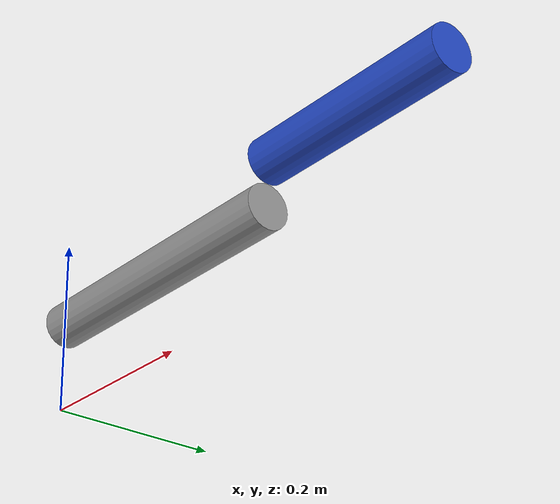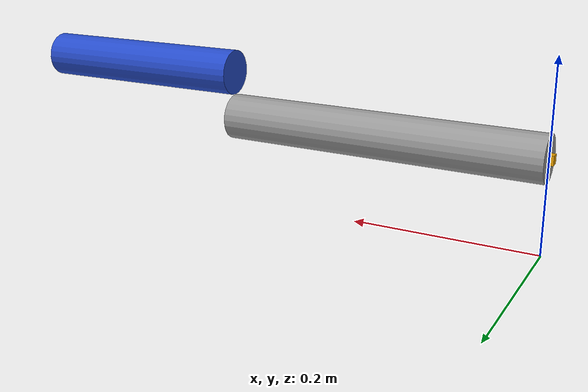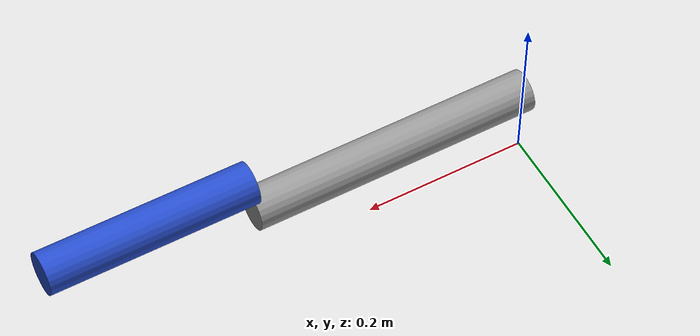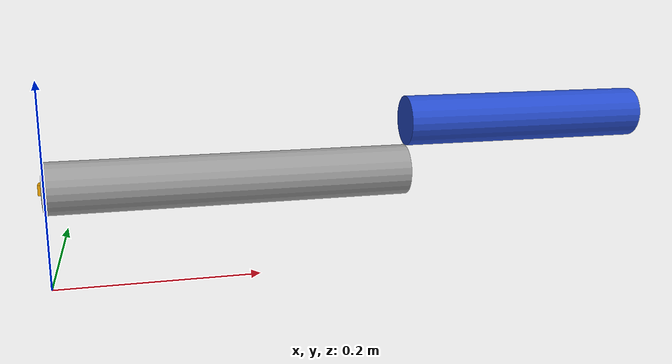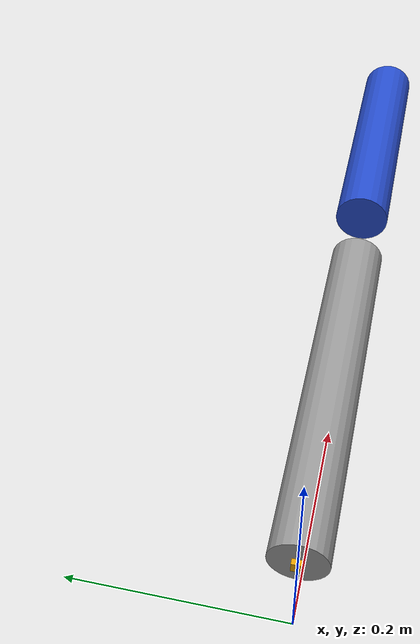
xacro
<?xml version="1.0"?>
<robot name="scara" xmlns:xacro="http://www.ros.org/wiki/xacro">
  <!-- Параметры -->
  <xacro:property name="L1" value="0.35"/>
  <xacro:property name="L2" value="0.25"/>
  <xacro:property name="radius" value="0.025"/>
  <xacro:property name="M1" value="1.924"/>
  <xacro:property name="M2" value="1.374"/>
  <xacro:property name="Ixx1" value="0.000601"/>
  <xacro:property name="Iyy1" value="0.01994"/>
  <xacro:property name="Izz1" value="0.01994"/>
  <xacro:property name="Ixx2" value="0.000429"/>
  <xacro:property name="Iyy2" value="0.00720"/>
  <xacro:property name="Izz2" value="0.00720"/>

  <xacro:include filename="$(find scara_sim)/description/materials.xacro"/>

  <link name="base_link">
    <inertial>
      <mass value="0.001"/>
      <inertia ixx="0.000001" ixy="0" ixz="0" iyy="0.000001" iyz="0" izz="0.000001"/>
    </inertial>
    <visual>
      <geometry><box size="0.01 0.01 0.01"/></geometry>
    </visual>
  </link>

  <joint name="joint1" type="continuous">
    <parent link="base_link"/>
    <child link="link1"/>
    <origin xyz="0 0 0" rpy="0 0 0"/>
    <axis xyz="0 0 1"/>
    <limit effort="1000000" velocity="100" lower="-3.14159" upper="3.14159"/>
    <dynamics damping="0.1" friction="0.0"/>
  </joint>

  <link name="link1">
    <inertial>
      <origin xyz="${L1/2} 0 0" rpy="0 1.5708 0"/>
      <mass value="${M1}"/>
      <inertia ixx="${Ixx1}" ixy="0" ixz="0" iyy="${Iyy1}" iyz="0" izz="${Izz1}"/>
    </inertial>
    <visual>
      <origin xyz="${L1/2} 0 0" rpy="0 1.5708 0"/>
      <geometry>
        <cylinder radius="${radius}" length="${L1}"/>
      </geometry>
      <material name="grey"/>
    </visual>
    <collision>
      <origin xyz="${L1/2} 0 0" rpy="0 1.5708 0"/>
      <geometry>
        <cylinder radius="${radius}" length="${L1}"/>
      </geometry>
    </collision>
  </link>

  <joint name="joint2" type="continuous">
    <parent link="link1"/>
    <child link="link2"/>
    <origin xyz="${L1} 0 ${radius*2}" rpy="0 0 0"/>
    <axis xyz="0 0 1"/>
    <limit effort="1000000" velocity="100" lower="-3.14159" upper="3.14159"/>
    <dynamics damping="0.1" friction="0.0"/>
  </joint>

  <link name="link2">
    <inertial>
      <origin xyz="${L2/2} 0 0" rpy="0 1.5708 0"/>
      <mass value="${M2}"/>
      <inertia ixx="${Ixx2}" ixy="0" ixz="0" iyy="${Iyy2}" iyz="0" izz="${Izz2}"/>
    </inertial>
    <visual>
      <origin xyz="${L2/2} 0 0" rpy="0 1.5708 0"/>
      <geometry>
        <cylinder radius="${radius}" length="${L2}"/>
      </geometry>
      <material name="blue"/>
    </visual>
    <collision>
      <origin xyz="${L2/2} 0 0" rpy="0 1.5708 0"/>
      <geometry>
        <cylinder radius="${radius}" length="${L2}"/>
      </geometry>
    </collision>
  </link>

  <!-- Инструментальная точка -->
  <link name="tool0"/>
  <joint name="tool_joint" type="fixed">
    <parent link="link2"/>
    <child link="tool0"/>
    <origin xyz="${L2} 0 0" rpy="0 0 0"/>
  </joint>

  <link name="world"/>

  <joint name="world_to_base" type="fixed">
    <parent link="world"/>
    <child link="base_link"/>
    <origin xyz="0 0 0.1" rpy="0 0 0"/>
  </joint>

  <!-- Plugin for Ignition Gazebo (gz_ros2_control) -->
  <gazebo>
    <plugin filename="gz_ros2_control-system" name="gz_ros2_control::GazeboSimROS2ControlPlugin">
      <parameters>$(find scara_sim)/config/scara_controllers.yaml</parameters>
    </plugin>
  </gazebo>

  <ros2_control name="GazeboSimSystem" type="system">
    <hardware>
      <plugin>gz_ros2_control/GazeboSimSystem</plugin>
    </hardware>
    <joint name="joint1">
      <command_interface name="effort">
        <param name="min">-1000</param>
        <param name="max">1000</param>
      </command_interface>
      <state_interface name="position">
        <param name="initial_value">0.157 </param> <!-- q1_start в радианах -->
      </state_interface>
      <state_interface name="velocity"/>
      <state_interface name="effort"/>
    </joint>
    <joint name="joint2">
      <command_interface name="effort">
        <param name="min">-1000</param>
        <param name="max">1000</param>
      </command_interface>
      <state_interface name="position">
        <param name="initial_value">2.802</param> <!-- q2_start в радианах -->
      </state_interface>
      <state_interface name="velocity"/>
      <state_interface name="effort"/>
    </joint>
  </ros2_control>

</robot>
